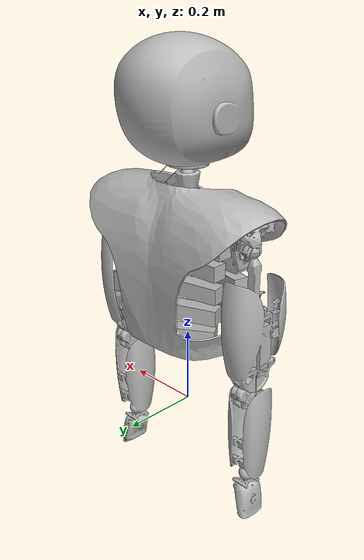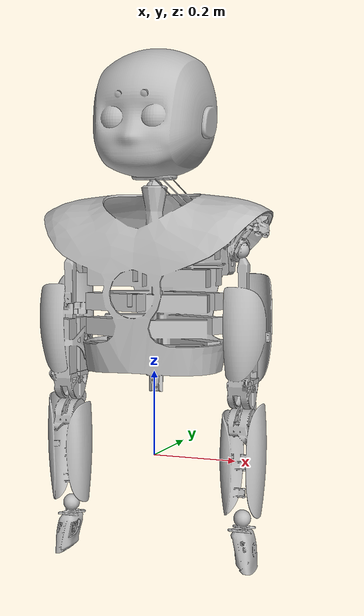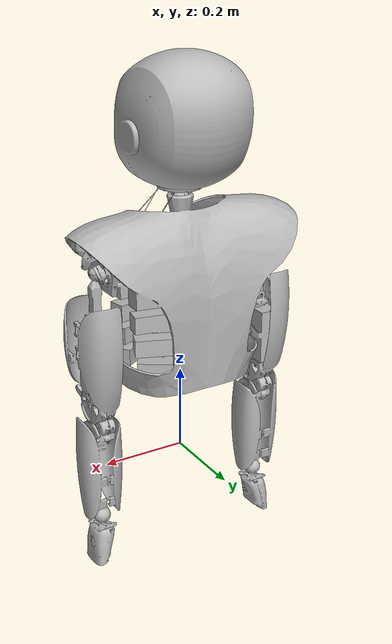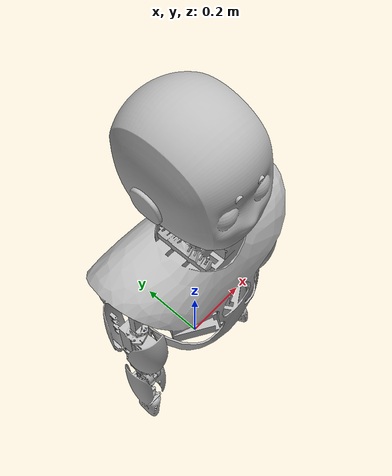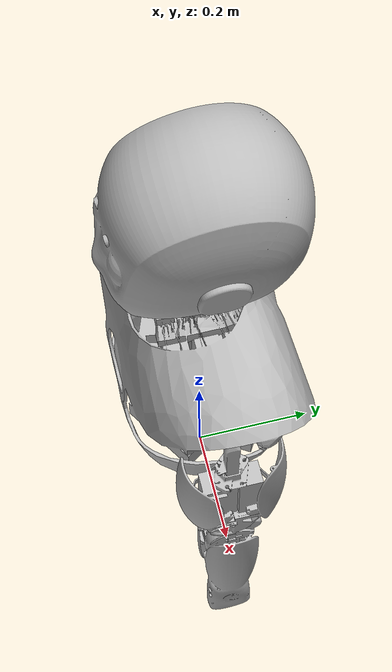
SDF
<?xml version="1.0" ?>
<sdf version="1.6">
	<model name="upper_body">
		<link name="torso">
			<self_collide>false</self_collide>
			<pose frame="">0.000237963898667883 0.010600314587434316 0.43137266049367495 0.0 -0.0 0.0</pose>
			<inertial>
				<pose frame="">0.0 0.0 0.0 0 0 0</pose>
				<mass>25.484532049638535</mass>
				<inertia>
					<ixx>5.258835582254277</ixx>
					<ixy>0.00011709544750634677</ixy>
					<ixz>-0.00334802333308169</ixz>
					<iyy>5.467803837169585</iyy>
					<iyz>-0.12072489827759955</iyz>
					<izz>0.533803340431137</izz>
				</inertia>
			</inertial>
			<collision name="torso_collision">
				<geometry>
					<mesh>
						<uri>model://upper_body/meshes/CAD/torso.stl</uri>
						<scale>0.001 0.001 0.001</scale>
					</mesh>
				</geometry>
			</collision>
			<visual name="torso_visual">
				<geometry>
					<mesh>
						<uri>model://upper_body/meshes/CAD/torso.stl</uri>
						<scale>0.001 0.001 0.001</scale>
					</mesh>
				</geometry>
			</visual>
		</link>
		<link name="lowerarm_right">
			<self_collide>false</self_collide>
			<pose frame="">-0.21920550558606886 -0.0012145313567968386 -0.13443132665279944 0.0 -0.0 0.0</pose>
			<inertial>
				<pose frame="">0.0 0.0 0.0 0 0 0</pose>
				<mass>1.0074638997705314</mass>
				<inertia>
					<ixx>0.03147609850046257</ixx>
					<ixy>-0.0002711089785375398</ixy>
					<ixz>-0.029796901932204578</ixz>
					<iyy>0.0797708396876748</iyy>
					<iyz>-6.28652323063764e-05</iyz>
					<izz>0.04941236986443757</izz>
				</inertia>
			</inertial>
			<collision name="lowerarm_right_collision">
				<geometry>
					<mesh>
						<uri>model://upper_body/meshes/CAD/lowerarm_right.stl</uri>
						<scale>0.001 0.001 0.001</scale>
					</mesh>
				</geometry>
			</collision>
			<visual name="lowerarm_right_visual">
				<geometry>
					<mesh>
						<uri>model://upper_body/meshes/CAD/lowerarm_right.stl</uri>
						<scale>0.001 0.001 0.001</scale>
					</mesh>
				</geometry>
			</visual>
		</link>
		<link name="lowerarm_left">
			<self_collide>false</self_collide>
			<pose frame="">0.21920550408249337 -0.0012145212151126214 -0.13443149211279104 0.0 -0.0 0.0</pose>
			<inertial>
				<pose frame="">0.0 0.0 0.0 0 0 0</pose>
				<mass>1.0074631712298445</mass>
				<inertia>
					<ixx>0.03147609940082702</ixx>
					<ixy>0.00027110633423701156</ixy>
					<ixz>0.029796916712719362</ixz>
					<iyy>0.07977080588923677</iyy>
					<iyz>-6.286623892047694e-05</iyz>
					<izz>0.04941233306547431</izz>
				</inertia>
			</inertial>
			<collision name="lowerarm_left_collision">
				<geometry>
					<mesh>
						<uri>model://upper_body/meshes/CAD/lowerarm_left.stl</uri>
						<scale>0.001 0.001 0.001</scale>
					</mesh>
				</geometry>
			</collision>
			<visual name="lowerarm_left_visual">
				<geometry>
					<mesh>
						<uri>model://upper_body/meshes/CAD/lowerarm_left.stl</uri>
						<scale>0.001 0.001 0.001</scale>
					</mesh>
				</geometry>
			</visual>
		</link>
		<link name="head">
			<self_collide>false</self_collide>
			<pose frame="">7.688070547429513e-05 0.006851130830040478 0.7940671399896186 0.0 -0.0 0.0</pose>
			<inertial>
				<pose frame="">0.0 0.0 0.0 0 0 0</pose>
				<mass>33.92015199425921</mass>
				<inertia>
					<ixx>21.75510812168486</ixx>
					<ixy>-0.0005606665168605437</ixy>
					<ixz>-0.002267135508357556</ixz>
					<iyy>21.69663072025339</iyy>
					<iyz>-0.2092129833464968</iyz>
					<izz>0.32740001700442967</izz>
				</inertia>
			</inertial>
			<collision name="head_collision">
				<geometry>
					<mesh>
						<uri>model://upper_body/meshes/CAD/head.stl</uri>
						<scale>0.001 0.001 0.001</scale>
					</mesh>
				</geometry>
			</collision>
			<visual name="head_visual">
				<geometry>
					<mesh>
						<uri>model://upper_body/meshes/CAD/head.stl</uri>
						<scale>0.001 0.001 0.001</scale>
					</mesh>
				</geometry>
			</visual>
		</link>
		<link name="elbow_right">
			<self_collide>false</self_collide>
			<pose frame="">-0.21691398932934977 0.03715524940392884 0.12383441553301969 0.0 -0.0 0.0</pose>
			<inertial>
				<pose frame="">0.0 0.0 0.0 0 0 0</pose>
				<mass>0.027833326423345923</mass>
				<inertia>
					<ixx>0.00046936798100956297</ixx>
					<ixy>0.0002242971847618781</ixy>
					<ixz>0.0007476129489564115</ixz>
					<iyy>0.0017407566471222783</iyy>
					<iyz>-0.00012795789058165995</iyz>
					<izz>0.001353174770056334</izz>
				</inertia>
			</inertial>
			<collision name="elbow_right_collision">
				<geometry>
					<mesh>
						<uri>model://upper_body/meshes/CAD/elbow_right.stl</uri>
						<scale>0.001 0.001 0.001</scale>
					</mesh>
				</geometry>
			</collision>
			<visual name="elbow_right_visual">
				<geometry>
					<mesh>
						<uri>model://upper_body/meshes/CAD/elbow_right.stl</uri>
						<scale>0.001 0.001 0.001</scale>
					</mesh>
				</geometry>
			</visual>
		</link>
		<link name="upperarm_right">
			<self_collide>false</self_collide>
			<pose frame="">-0.22103219949259692 0.001479947103269617 0.296169604638789 0.0 -0.0 0.0</pose>
			<inertial>
				<pose frame="">0.0 0.0 0.0 0 0 0</pose>
				<mass>0.47897938041859955</mass>
				<inertia>
					<ixx>0.047739785217205295</ixx>
					<ixy>0.0001599943964407516</ixy>
					<ixz>0.03134774036779062</ixz>
					<iyy>0.07049498506434859</iyy>
					<iyz>-0.00020946246956613274</iyz>
					<izz>0.024477263936243224</izz>
				</inertia>
			</inertial>
			<collision name="upperarm_right_collision">
				<geometry>
					<mesh>
						<uri>model://upper_body/meshes/CAD/upperarm_right.stl</uri>
						<scale>0.001 0.001 0.001</scale>
					</mesh>
				</geometry>
			</collision>
			<visual name="upperarm_right_visual">
				<geometry>
					<mesh>
						<uri>model://upper_body/meshes/CAD/upperarm_right.stl</uri>
						<scale>0.001 0.001 0.001</scale>
					</mesh>
				</geometry>
			</visual>
		</link>
		<link name="shoulder_right_link1">
			<self_collide>false</self_collide>
			<pose frame="">-0.2060530384599503 0.007199999938235944 0.4812847296953862 0.0 -0.0 0.0</pose>
			<inertial>
				<pose frame="">0.0 0.0 0.0 0 0 0</pose>
				<mass>0.13152801243029266</mass>
				<inertia>
					<ixx>0.030485104811193924</ixx>
					<ixy>0.00019548246589014734</ixy>
					<ixz>0.013041807175836773</ixz>
					<iyy>0.03606823247246791</iyy>
					<iyz>-0.000456127340257625</iyz>
					<izz>0.00560301206595923</izz>
				</inertia>
			</inertial>
			<collision name="shoulder_right_link1_collision">
				<geometry>
					<mesh>
						<uri>model://upper_body/meshes/CAD/shoulder_right_link1.stl</uri>
						<scale>0.001 0.001 0.001</scale>
					</mesh>
				</geometry>
			</collision>
			<visual name="shoulder_right_link1_visual">
				<geometry>
					<mesh>
						<uri>model://upper_body/meshes/CAD/shoulder_right_link1.stl</uri>
						<scale>0.001 0.001 0.001</scale>
					</mesh>
				</geometry>
			</visual>
		</link>
		<link name="shoulder_right_link2">
			<self_collide>false</self_collide>
			<pose frame="">-0.21355303845995133 -0.007800000061764042 0.48128472969538605 0.0 -0.0 0.0</pose>
			<inertial>
				<pose frame="">0.0 0.0 0.0 0 0 0</pose>
				<mass>0.1315280124302925</mass>
				<inertia>
					<ixx>0.030486288563549433</ixx>
					<ixy>-0.0002187381219558529</ixy>
					<ixz>0.013520274580510552</ixz>
					<iyy>0.036482157122224974</iyy>
					<iyz>0.0004941088024231829</iyz>
					<izz>0.006018120468071959</izz>
				</inertia>
			</inertial>
			<collision name="shoulder_right_link2_collision">
				<geometry>
					<mesh>
						<uri>model://upper_body/meshes/CAD/shoulder_right_link2.stl</uri>
						<scale>0.001 0.001 0.001</scale>
					</mesh>
				</geometry>
			</collision>
			<visual name="shoulder_right_link2_visual">
				<geometry>
					<mesh>
						<uri>model://upper_body/meshes/CAD/shoulder_right_link2.stl</uri>
						<scale>0.001 0.001 0.001</scale>
					</mesh>
				</geometry>
			</visual>
		</link>
		<link name="elbow_left">
			<self_collide>false</self_collide>
			<pose frame="">0.21691401875224348 0.037155181389098 0.12383444817565957 0.0 -0.0 0.0</pose>
			<inertial>
				<pose frame="">0.0 0.0 0.0 0 0 0</pose>
				<mass>0.027833366422315858</mass>
				<inertia>
					<ixx>0.000469368745299957</ixx>
					<ixy>-0.00022429711641259515</ixy>
					<ixz>-0.0007476143495157416</ixz>
					<iyy>0.0017407597298930942</iyy>
					<iyz>-0.0001279578522344028</iyz>
					<izz>0.0013531769418158295</izz>
				</inertia>
			</inertial>
			<collision name="elbow_left_collision">
				<geometry>
					<mesh>
						<uri>model://upper_body/meshes/CAD/elbow_left.stl</uri>
						<scale>0.001 0.001 0.001</scale>
					</mesh>
				</geometry>
			</collision>
			<visual name="elbow_left_visual">
				<geometry>
					<mesh>
						<uri>model://upper_body/meshes/CAD/elbow_left.stl</uri>
						<scale>0.001 0.001 0.001</scale>
					</mesh>
				</geometry>
			</visual>
		</link>
		<link name="upperarm_left">
			<self_collide>false</self_collide>
			<pose frame="">0.22103222189965216 0.0014798961331047192 0.29616980663913944 0.0 -0.0 0.0</pose>
			<inertial>
				<pose frame="">0.0 0.0 0.0 0 0 0</pose>
				<mass>0.4789794871685731</mass>
				<inertia>
					<ixx>0.047739844645411804</ixx>
					<ixy>-0.00015998892477739812</ixy>
					<ixz>-0.031347771480737675</ixz>
					<iyy>0.07049505412035494</iyy>
					<iyz>-0.00020945579244281882</iyz>
					<izz>0.02447727369058352</izz>
				</inertia>
			</inertial>
			<collision name="upperarm_left_collision">
				<geometry>
					<mesh>
						<uri>model://upper_body/meshes/CAD/upperarm_left.stl</uri>
						<scale>0.001 0.001 0.001</scale>
					</mesh>
				</geometry>
			</collision>
			<visual name="upperarm_left_visual">
				<geometry>
					<mesh>
						<uri>model://upper_body/meshes/CAD/upperarm_left.stl</uri>
						<scale>0.001 0.001 0.001</scale>
					</mesh>
				</geometry>
			</visual>
		</link>
		<link name="shoulder_left_link1">
			<self_collide>false</self_collide>
			<pose frame="">0.20605303845995127 0.007199999938235946 0.481284729695386 0.0 -0.0 0.0</pose>
			<inertial>
				<pose frame="">0.0 0.0 0.0 0 0 0</pose>
				<mass>0.13152801243029272</mass>
				<inertia>
					<ixx>0.030485104811193892</ixx>
					<ixy>-0.00019548246589014729</ixy>
					<ixz>-0.013041807175836828</ixz>
					<iyy>0.03606823247246791</iyy>
					<iyz>-0.000456127340257625</iyz>
					<izz>0.0056030120659592755</izz>
				</inertia>
			</inertial>
			<collision name="shoulder_left_link1_collision">
				<geometry>
					<mesh>
						<uri>model://upper_body/meshes/CAD/shoulder_left_link1.stl</uri>
						<scale>0.001 0.001 0.001</scale>
					</mesh>
				</geometry>
			</collision>
			<visual name="shoulder_left_link1_visual">
				<geometry>
					<mesh>
						<uri>model://upper_body/meshes/CAD/shoulder_left_link1.stl</uri>
						<scale>0.001 0.001 0.001</scale>
					</mesh>
				</geometry>
			</visual>
		</link>
		<link name="shoulder_left_link2">
			<self_collide>false</self_collide>
			<pose frame="">0.2135530384599511 -0.007800000061764059 0.481284729695386 0.0 -0.0 0.0</pose>
			<inertial>
				<pose frame="">0.0 0.0 0.0 0 0 0</pose>
				<mass>0.13152801243029277</mass>
				<inertia>
					<ixx>0.03048628856354949</ixx>
					<ixy>0.00021873812195585343</ixy>
					<ixz>-0.013520274580510562</ixz>
					<iyy>0.03648215712222504</iyy>
					<iyz>0.0004941088024231848</iyz>
					<izz>0.00601812046807196</izz>
				</inertia>
			</inertial>
			<collision name="shoulder_left_link2_collision">
				<geometry>
					<mesh>
						<uri>model://upper_body/meshes/CAD/shoulder_left_link2.stl</uri>
						<scale>0.001 0.001 0.001</scale>
					</mesh>
				</geometry>
			</collision>
			<visual name="shoulder_left_link2_visual">
				<geometry>
					<mesh>
						<uri>model://upper_body/meshes/CAD/shoulder_left_link2.stl</uri>
						<scale>0.001 0.001 0.001</scale>
					</mesh>
				</geometry>
			</visual>
		</link>
		<link name="head_link1">
			<self_collide>false</self_collide>
			<pose frame="">0.0037499889567509334 0.007510234121302186 0.6220205346780562 0.0 -0.0 0.0</pose>
			<inertial>
				<pose frame="">0.0 0.0 0.0 0 0 0</pose>
				<mass>0.13152839994763724</mass>
				<inertia>
					<ixx>0.05090880856889025</ixx>
					<ixy>-3.349320812476213e-06</ixy>
					<ixz>-0.00030864786125929506</ixz>
					<iyy>0.05090879019898153</iyy>
					<iyz>-0.0006147722468252338</iyz>
					<izz>2.106285190859084e-05</izz>
				</inertia>
			</inertial>
			<collision name="head_link1_collision">
				<geometry>
					<mesh>
						<uri>model://upper_body/meshes/CAD/head_link1.stl</uri>
						<scale>0.001 0.001 0.001</scale>
					</mesh>
				</geometry>
			</collision>
			<visual name="head_link1_visual">
				<geometry>
					<mesh>
						<uri>model://upper_body/meshes/CAD/head_link1.stl</uri>
						<scale>0.001 0.001 0.001</scale>
					</mesh>
				</geometry>
			</visual>
		</link>
		<link name="head_link2">
			<self_collide>false</self_collide>
			<pose frame="">-0.0037499999947842766 -0.00748971712790494 0.6219795043532205 0.0 -0.0 0.0</pose>
			<inertial>
				<pose frame="">0.0 0.0 0.0 0 0 0</pose>
				<mass>0.1315280124294498</mass>
				<inertia>
					<ixx>0.05090190469684626</ixx>
					<ixy>-3.3493208073071583e-06</ixy>
					<ixz>0.0003086295420776442</ixz>
					<iyy>0.0509019230150866</iyy>
					<iyz>0.0006130818021459909</iyz>
					<izz>2.1026163738168032e-05</izz>
				</inertia>
			</inertial>
			<collision name="head_link2_collision">
				<geometry>
					<mesh>
						<uri>model://upper_body/meshes/CAD/head_link2.stl</uri>
						<scale>0.001 0.001 0.001</scale>
					</mesh>
				</geometry>
			</collision>
			<visual name="head_link2_visual">
				<geometry>
					<mesh>
						<uri>model://upper_body/meshes/CAD/head_link2.stl</uri>
						<scale>0.001 0.001 0.001</scale>
					</mesh>
				</geometry>
			</visual>
		</link>
		<joint name="head_axis0" type="revolute">
			<parent>torso</parent>
			<child>head_link1</child>
			<pose frame="">-0.0037499889515112904 -0.00751023412654152 0.003729465321943408 0 0 0</pose>
			<axis>
				<xyz>-1.0000000000000013 1.2246467991473535e-16 -4.641349029366492e-16</xyz>
				<limit>
					<lower>-0.7853981633974483</lower>
					<upper>0.7853981633974483</upper>
				</limit>
				<use_parent_model_frame>0</use_parent_model_frame>
			</axis>
		</joint>
		<joint name="head_axis1" type="revolute">
			<parent>head_link1</parent>
			<child>head_link2</child>
			<pose frame="">0.003750000000023919 0.007489717122665607 0.003770495646779182 0 0 0</pose>
			<axis>
				<xyz>-1.269691636732058e-18 0.9999962609130065 0.00273462246129211</xyz>
				<limit>
					<lower>-0.7853981633974483</lower>
					<upper>0.7853981633974483</upper>
				</limit>
				<use_parent_model_frame>0</use_parent_model_frame>
			</axis>
		</joint>
		<joint name="head_axis2" type="revolute">
			<parent>head_link2</parent>
			<child>head</child>
			<pose frame="">-7.688070023444e-05 -0.02685105605353994 -0.1683718324388449 0 0 0</pose>
			<axis>
				<xyz>-3.331592236309741e-19 -0.00273462246129211 0.9999962609130065</xyz>
				<limit>
					<lower>-0.7853981633974483</lower>
					<upper>0.7853981633974483</upper>
				</limit>
				<use_parent_model_frame>0</use_parent_model_frame>
			</axis>
		</joint>
		<joint name="shoulder_left_axis0" type="revolute">
			<parent>torso</parent>
			<child>shoulder_left_link1</child>
			<pose frame="">0.003749999999999929 -0.007500000000000009 0.00375 0 0 0</pose>
			<axis>
				<xyz>-1.0 3.6718754185775985e-18 -1.3800689865091197e-15</xyz>
				<limit>
					<lower>-1.3962634015954636</lower>
					<upper>0.17453292519943295</upper>
				</limit>
				<use_parent_model_frame>0</use_parent_model_frame>
			</axis>
		</joint>
		<joint name="shoulder_left_axis2" type="revolute">
			<parent>shoulder_left_link2</parent>
			<child>upperarm_left</child>
			<pose frame="">-0.011229183439700918 -0.021779896194868777 0.18886492305624658 0 0 0</pose>
			<axis>
				<xyz>-1.2246467991473532e-16 -1.6292900917847355e-16 1.0</xyz>
				<limit>
					<lower>0.0</lower>
					<upper>0.0</upper>
				</limit>
				<use_parent_model_frame>0</use_parent_model_frame>
			</axis>
		</joint>
		<joint name="shoulder_right_axis0" type="revolute">
			<parent>torso</parent>
			<child>shoulder_right_link1</child>
			<pose frame="">-0.003750000000000959 -0.007499999999999998 0.003749999999999787 0 0 0</pose>
			<axis>
				<xyz>1.0 -2.8134622404579915e-17 -1.3122219360502844e-15</xyz>
				<limit>
					<lower>0.0</lower>
					<upper>0.0</upper>
				</limit>
				<use_parent_model_frame>0</use_parent_model_frame>
			</axis>
		</joint>
		<joint name="shoulder_right_axis1" type="revolute">
			<parent>shoulder_right_link1</parent>
			<child>shoulder_right_link2</child>
			<pose frame="">0.003750000000000071 0.007499999999999988 0.003749999999999929 0 0 0</pose>
			<axis>
				<xyz>0.0 1.0 1.6292900917847355e-16</xyz>
				<limit>
					<lower>0.0</lower>
					<upper>0.0</upper>
				</limit>
				<use_parent_model_frame>0</use_parent_model_frame>
			</axis>
		</joint>
		<joint name="shoulder_right_axis2" type="revolute">
			<parent>shoulder_right_link2</parent>
			<child>upperarm_right</child>
			<pose frame="">0.011229161032645684 -0.02177994716503367 0.18886512505659703 0 0 0</pose>
			<axis>
				<xyz>1.2246467991473532e-16 -1.6292900917847355e-16 1.0</xyz>
				<limit>
					<lower>0.0</lower>
					<upper>0.0</upper>
				</limit>
				<use_parent_model_frame>0</use_parent_model_frame>
			</axis>
		</joint>
		<joint name="shoulder_left_axis1" type="revolute">
			<parent>shoulder_left_link1</parent>
			<child>shoulder_left_link2</child>
			<pose frame="">-0.003749999999999858 0.007500000000000005 0.00375 0 0 0</pose>
			<axis>
				<xyz>0.0 -1.0 -1.6292900917847355e-16</xyz>
				<limit>
					<lower>0.0</lower>
					<upper>0.0</upper>
				</limit>
				<use_parent_model_frame>0</use_parent_model_frame>
			</axis>
		</joint>
		<joint name="elbow_right_axis0" type="revolute">
			<parent>upperarm_right</parent>
			<child>elbow_right</child>
			<pose frame="">-0.004889049130601713 -0.0374552494656929 0.04449902507832411 0 0 0</pose>
			<axis>
				<xyz>1.0 2.688885670503931e-16 -5.646175137091412e-17</xyz>
				<limit>
					<lower>0.0</lower>
					<upper>0.0</upper>
				</limit>
				<use_parent_model_frame>0</use_parent_model_frame>
			</axis>
		</joint>
		<joint name="elbow_right_axis1" type="revolute">
			<parent>elbow_right</parent>
			<child>lowerarm_right</child>
			<pose frame="">0.0004024671261094426 0.0009145312950327908 0.21276476726414345 0 0 0</pose>
			<axis>
				<xyz>-1.0 9.561639987082526e-15 5.783096611253163e-14</xyz>
				<limit>
					<lower>0.0</lower>
					<upper>0.0</upper>
				</limit>
				<use_parent_model_frame>0</use_parent_model_frame>
			</axis>
		</joint>
		<joint name="elbow_left_axis0" type="revolute">
			<parent>upperarm_left</parent>
			<child>elbow_left</child>
			<pose frame="">0.004889019707708009 -0.03745518145086205 0.044498992435684226 0 0 0</pose>
			<axis>
				<xyz>1.0 -2.688885670503931e-16 5.646175137091412e-17</xyz>
				<limit>
					<lower>0.0</lower>
					<upper>0.0</upper>
				</limit>
				<use_parent_model_frame>0</use_parent_model_frame>
			</axis>
		</joint>
		<joint name="elbow_left_axis1" type="revolute">
			<parent>elbow_left</parent>
			<child>lowerarm_left</child>
			<pose frame="">-0.000402465622533974 0.0009145211533485737 0.212764932724135 0 0 0</pose>
			<axis>
				<xyz>-1.0 -9.561639987082526e-15 -5.783096611253163e-14</xyz>
				<limit>
					<lower>0.0</lower>
					<upper>0.0</upper>
				</limit>
				<use_parent_model_frame>0</use_parent_model_frame>
			</axis>
		</joint>
		<plugin filename="libcardsflow_gazebo_plugin.so" name="cardsflow_gazebo_plugin"/>
	</model>
</sdf>
